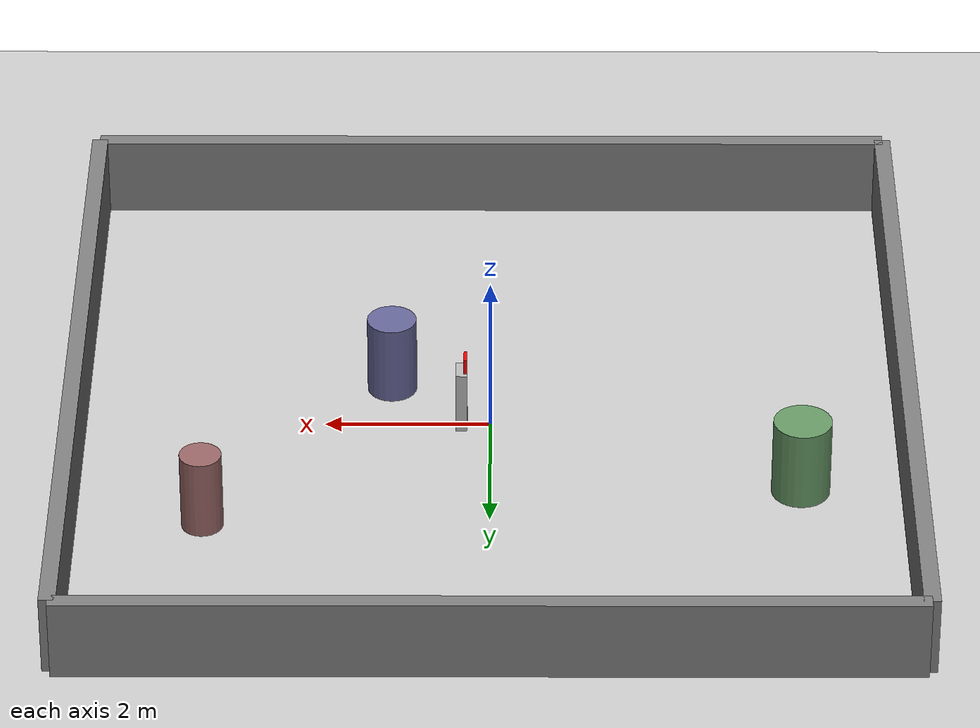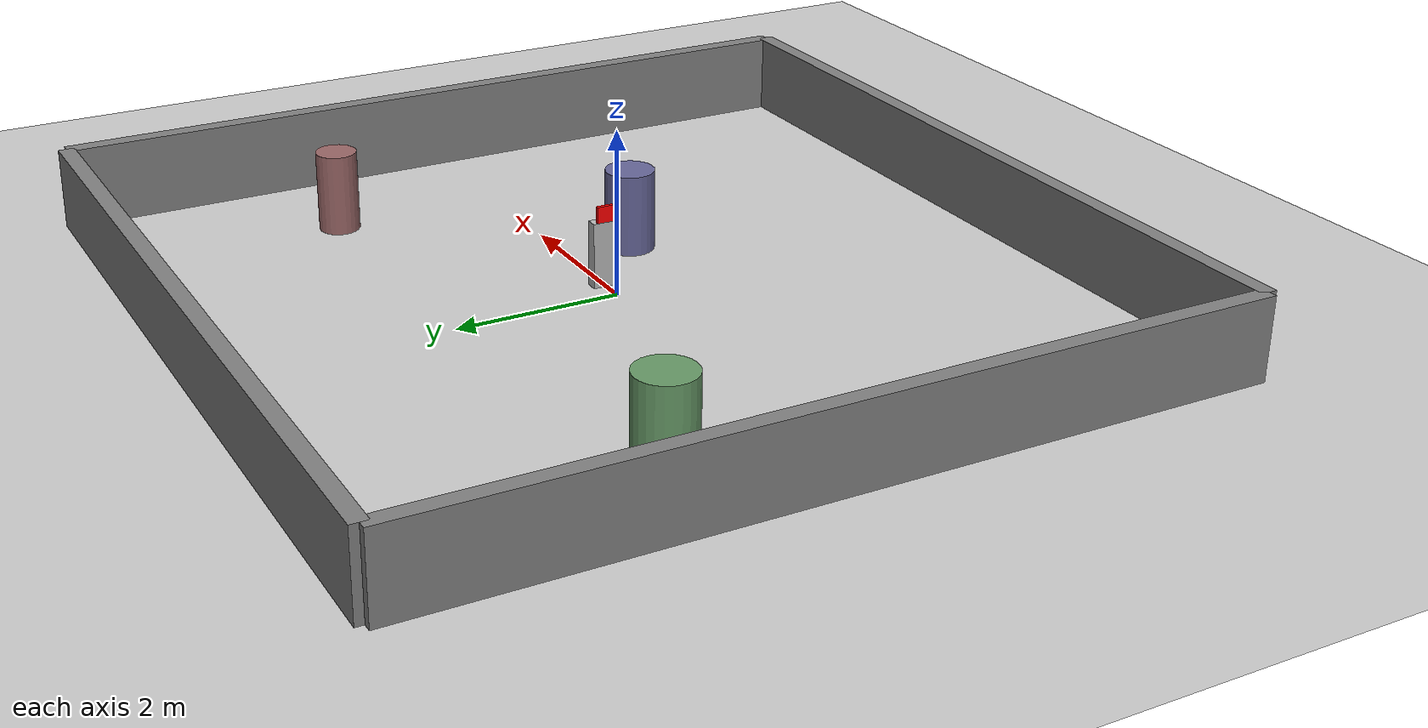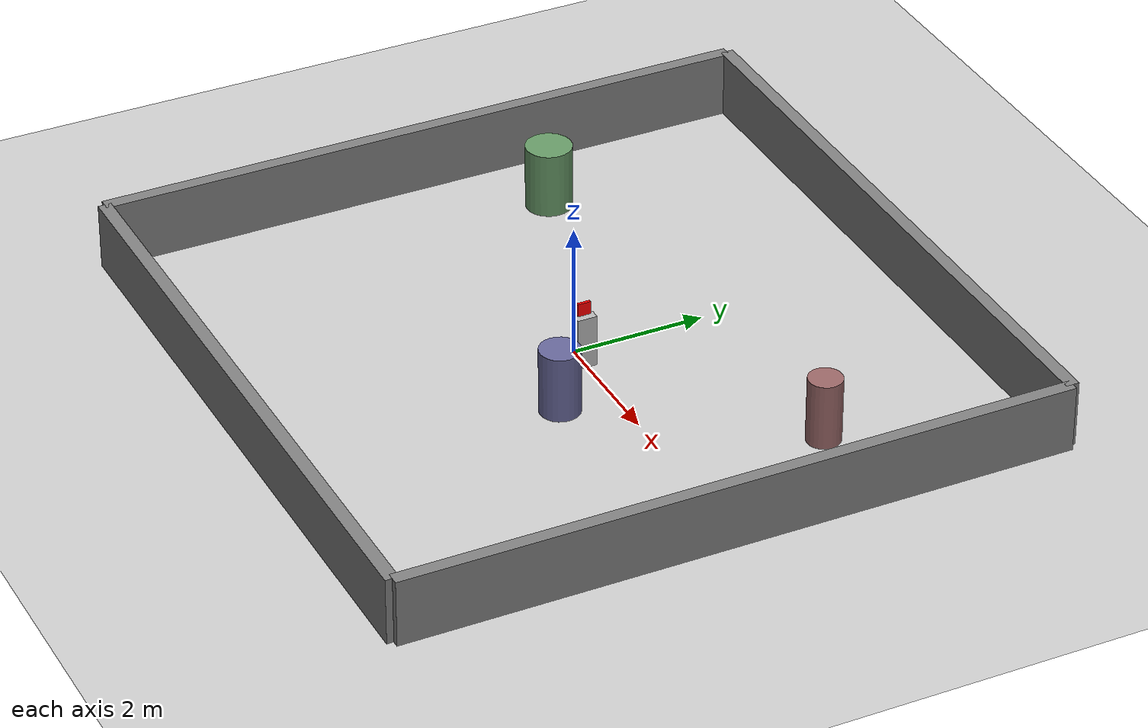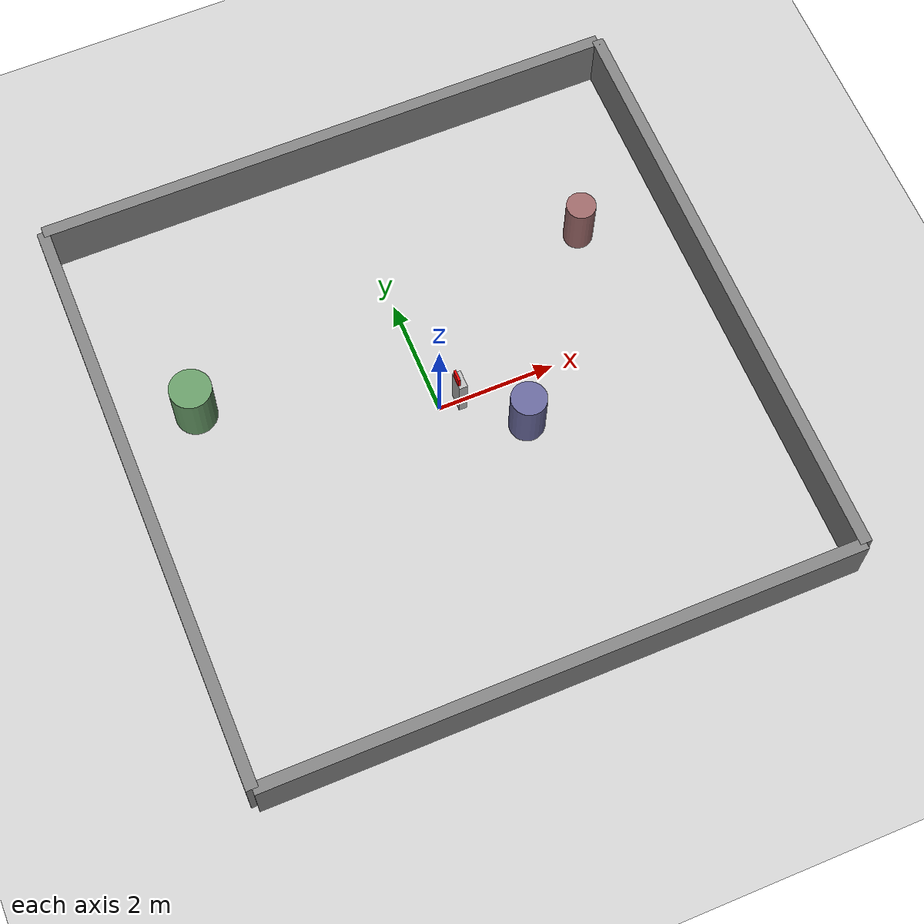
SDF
<sdf version='1.10'>
  <world name='empty'>
    <!-- Moderate ODE physics settings -->
    <!-- Restore simple/initial physics settings -->

    <physics name='1ms' type='ignored'>
      <max_step_size>0.01</max_step_size>
      <real_time_factor>1</real_time_factor>
      <real_time_update_rate>100</real_time_update_rate>
    </physics>
    <plugin name='gz::sim::systems::Physics' filename='gz-sim-physics-system'/>
    <plugin name='gz::sim::systems::UserCommands' filename='gz-sim-user-commands-system'/>
    <plugin name='gz::sim::systems::SceneBroadcaster' filename='gz-sim-scene-broadcaster-system'/>
    <plugin name='gz::sim::systems::Contact' filename='gz-sim-contact-system'/>
    <plugin name='gz::sim::systems::Sensors' filename='gz-sim-sensors-system'>
      <render_engine>ogre2</render_engine>
    </plugin>
    <gravity>0 0 -9.8000000000000007</gravity>
    <magnetic_field>5.5644999999999998e-06 2.2875799999999999e-05 -4.2388400000000002e-05</magnetic_field>
    <atmosphere type='adiabatic'/>
    <scene>
      <ambient>0.400000006 0.400000006 0.400000006 1</ambient>
      <background>0.699999988 0.699999988 0.699999988 1</background>
      <shadows>true</shadows>
    </scene>
    <model name='ground_plane'>
      <static>true</static>
      <link name='link'>
        <collision name='collision'>
          <geometry>
            <plane>
              <normal>0 0 1</normal>
              <size>100 100</size>
            </plane>
          </geometry>
          <surface>
            <friction>
              <ode/>
            </friction>
            <bounce/>
            <contact/>
          </surface>
        </collision>
        <visual name='visual'>
          <geometry>
            <plane>
              <normal>0 0 1</normal>
              <size>100 100</size>
            </plane>
          </geometry>
          <material>
            <ambient>0.800000012 0.800000012 0.800000012 1</ambient>
            <diffuse>0.800000012 0.800000012 0.800000012 1</diffuse>
            <specular>0.800000012 0.800000012 0.800000012 1</specular>
          </material>
        </visual>
        <pose>0 0 0 0 0 0</pose>
        <inertial>
          <pose>0 0 0 0 0 0</pose>
          <mass>1</mass>
          <inertia>
            <ixx>1</ixx>
            <ixy>0</ixy>
            <ixz>0</ixz>
            <iyy>1</iyy>
            <iyz>0</iyz>
            <izz>1</izz>
          </inertia>
        </inertial>
        <enable_wind>false</enable_wind>
      </link>
      <pose>0 0 0 0 0 0</pose>
      <self_collide>false</self_collide>
    </model>
    <gui>
      <camera name="user_camera">
        <pose>0 0 10 0 -1.57 0</pose>
      </camera>
    </gui>

    <light name='sun' type='directional'>
      <pose>0 0 10 0 0 0</pose>
      <cast_shadows>true</cast_shadows>
      <intensity>1</intensity>
      <direction>-0.5 0.10000000000000001 -0.90000000000000002</direction>
      <diffuse>0.800000012 0.800000012 0.800000012 1</diffuse>
      <specular>0.200000003 0.200000003 0.200000003 1</specular>
      <attenuation>
        <range>1000</range>
        <linear>0.01</linear>
        <constant>0.90000000000000002</constant>
        <quadratic>0.001</quadratic>
      </attenuation>
      <spot>
        <inner_angle>0</inner_angle>
        <outer_angle>0</outer_angle>
        <falloff>0</falloff>
      </spot>
    </light>

    <!-- Square walls for navigation testing -->

    <model name='wall_north'>
      <static>true</static>
      <pose>0 5.0 0.5 0 0 0</pose>
      <link name='link'>
        <collision name='collision'>
          <geometry>
            <box>
              <size>10.0 0.2 1.0</size>
            </box>
          </geometry>
          <surface>
            <friction>
              <ode/>
            </friction>
            <contact/>
          </surface>
        </collision>
        <visual name='visual'>
          <geometry>
            <box>
              <size>10.0 0.2 1.0</size>
            </box>
          </geometry>
          <material>
            <ambient>0.5 0.5 0.5 1</ambient>
            <diffuse>0.5 0.5 0.5 1</diffuse>
          </material>
        </visual>
      </link>
    </model>

    <model name='wall_south'>
      <static>true</static>
      <pose>0 -5.0 0.5 0 0 0</pose>
      <link name='link'>
        <collision name='collision'>
          <geometry>
            <box>
              <size>10.0 0.2 1.0</size>
            </box>
          </geometry>
          <surface>
            <friction>
              <ode/>
            </friction>
            <contact/>
          </surface>
        </collision>
        <visual name='visual'>
          <geometry>
            <box>
              <size>10.0 0.2 1.0</size>
            </box>
          </geometry>
          <material>
            <ambient>0.5 0.5 0.5 1</ambient>
            <diffuse>0.5 0.5 0.5 1</diffuse>
          </material>
        </visual>
      </link>
    </model>

    <model name='wall_east'>
      <static>true</static>
      <pose>5.0 0 0.5 0 0 0</pose>
      <link name='link'>
        <collision name='collision'>
          <geometry>
            <box>
              <size>0.2 10.0 1.0</size>
            </box>
          </geometry>
          <surface>
            <friction>
              <ode/>
            </friction>
            <contact/>
          </surface>
        </collision>
        <visual name='visual'>
          <geometry>
            <box>
              <size>0.2 10.0 1.0</size>
            </box>
          </geometry>
          <material>
            <ambient>0.5 0.5 0.5 1</ambient>
            <diffuse>0.5 0.5 0.5 1</diffuse>
          </material>
        </visual>
      </link>
    </model>

    <model name='wall_west'>
      <static>true</static>
      <pose>-5.0 0 0.5 0 0 0</pose>
      <link name='link'>
        <collision name='collision'>
          <geometry>
            <box>
              <size>0.2 10.0 1.0</size>
            </box>
          </geometry>
          <surface>
            <friction>
              <ode/>
            </friction>
            <contact/>
          </surface>
        </collision>
        <visual name='visual'>
          <geometry>
            <box>
              <size>0.2 10.0 1.0</size>
            </box>
          </geometry>
          <material>
            <ambient>0.5 0.5 0.5 1</ambient>
            <diffuse>0.5 0.5 0.5 1</diffuse>
          </material>
        </visual>
      </link>
    </model>

    <!-- Interior cylinders for navigation obstacles -->
    <model name='pillar_center'>
      <static>true</static>
      <pose>1.2 -0.8 0.5 0 0 0</pose>
      <link name='link'>
        <collision name='collision'>
          <geometry>
            <cylinder>
              <radius>0.3</radius>
              <length>1.0</length>
            </cylinder>
          </geometry>
        </collision>
        <visual name='visual'>
          <geometry>
            <cylinder>
              <radius>0.3</radius>
              <length>1.0</length>
            </cylinder>
          </geometry>
          <material>
            <ambient>0.4 0.4 0.6 1</ambient>
            <diffuse>0.4 0.4 0.6 1</diffuse>
          </material>
        </visual>
      </link>
    </model>

    <model name='pillar_ne'>
      <static>true</static>
      <pose>3.4 2.1 0.5 0 0 0</pose>
      <link name='link'>
        <collision name='collision'>
          <geometry>
            <cylinder>
              <radius>0.25</radius>
              <length>1.0</length>
            </cylinder>
          </geometry>
        </collision>
        <visual name='visual'>
          <geometry>
            <cylinder>
              <radius>0.25</radius>
              <length>1.0</length>
            </cylinder>
          </geometry>
          <material>
            <ambient>0.6 0.4 0.4 1</ambient>
            <diffuse>0.6 0.4 0.4 1</diffuse>
          </material>
        </visual>
      </link>
    </model>

    <model name='pillar_sw'>
      <static>true</static>
      <pose>-3.7 1.4 0.5 0 0 0</pose>
      <link name='link'>
        <collision name='collision'>
          <geometry>
            <cylinder>
              <radius>0.35</radius>
              <length>1.0</length>
            </cylinder>
          </geometry>
        </collision>
        <visual name='visual'>
          <geometry>
            <cylinder>
              <radius>0.35</radius>
              <length>1.0</length>
            </cylinder>
          </geometry>
          <material>
            <ambient>0.4 0.6 0.4 1</ambient>
            <diffuse>0.4 0.6 0.4 1</diffuse>
          </material>
        </visual>
      </link>
    </model>
<!-- Pedestal: spans x=0.28 to x=0.42, y=-0.15 to y=0.15 -->
<!-- Robot body front ~x=0.15, so 13cm clearance -->
<model name="pedestal"><static>true</static>
  <link name="link">
    <visual name="v"><geometry><box><size>0.14 0.30 0.80</size></box></geometry></visual>
    <collision name="c"><geometry><box><size>0.14 0.30 0.80</size></box></geometry></collision>
  </link>
  <pose>0.35 0.0 0.40 0 0 0</pose>
</model>
<model name="red_book"><static>false</static>
  <link name="link">
    <inertial><mass>0.5</mass>
      <inertia><ixx>0.002</ixx><ixy>0</ixy><ixz>0</ixz>
               <iyy>0.002</iyy><iyz>0</iyz><izz>0.001</izz></inertia>
    </inertial>
    <visual name="v"><geometry><box><size>0.04 0.20 0.20</size></box></geometry>
      <material><ambient>1 0 0 1</ambient></material></visual>
    <collision name="c"><geometry><box><size>0.04 0.20 0.20</size></box></geometry></collision>
  </link>
  <pose>0.30 0.0 0.90 0 0 0</pose>
</model>
  </world>
</sdf>
